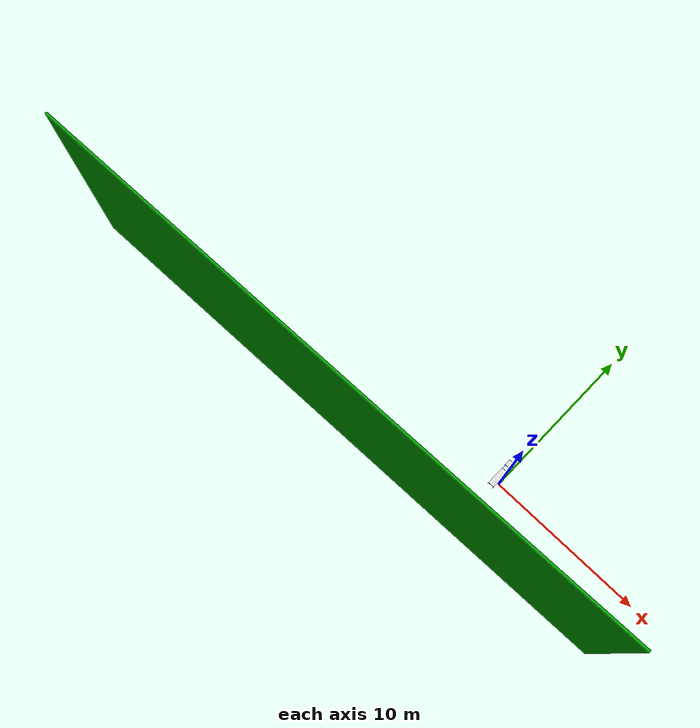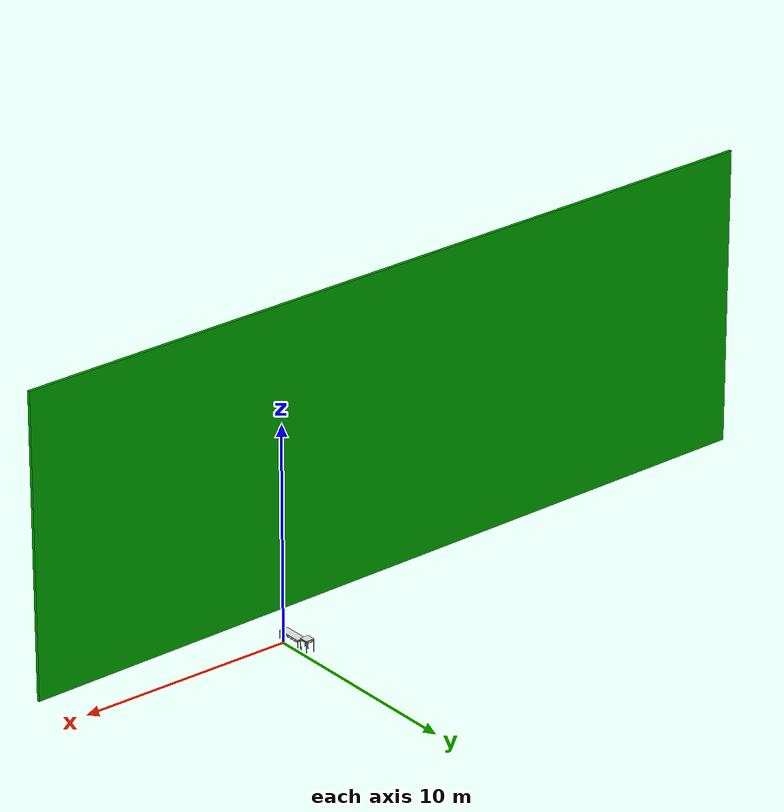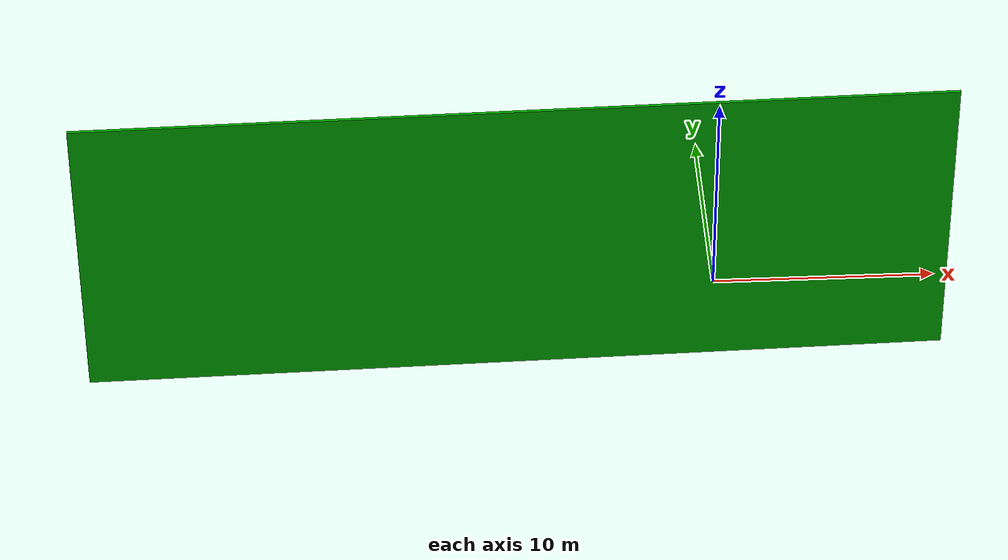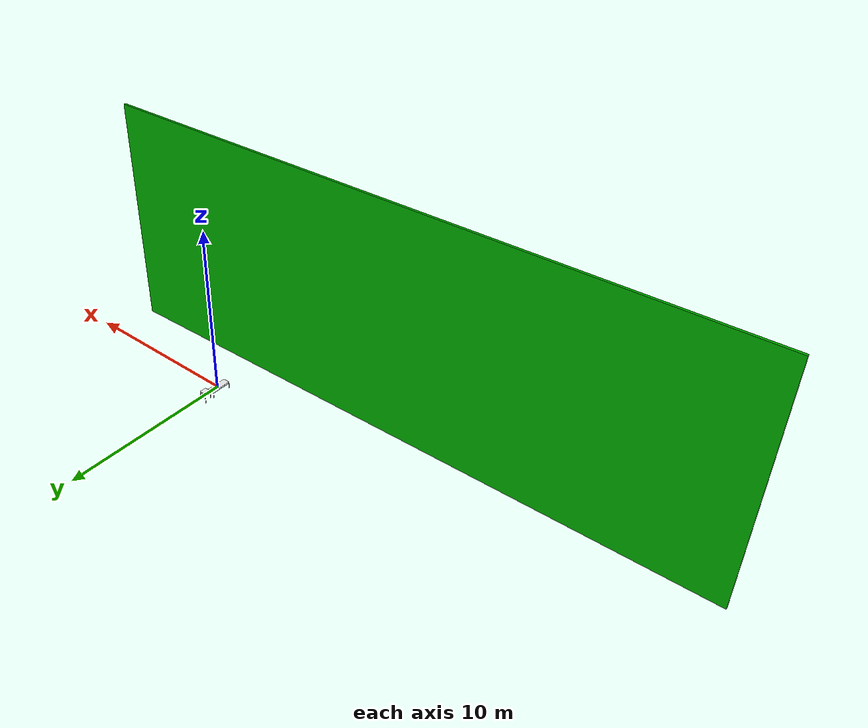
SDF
<sdf version="1.6">
 <world name="default">
  <model name="wrc_tall_table">
   <static>1</static>
   <link name="link">
    <inertial><mass>1</mass></inertial>
    <collision name="top">
     <pose>0 0 0.59 0 -0 0</pose>
     <geometry><box><size>0.4 0.4 0.02</size></box></geometry>
    </collision>
    <visual name="top_v">
     <pose>0 0 0.59 0 -0 0</pose>
     <geometry><box><size>0.4 0.4 0.02</size></box></geometry>
     <material>
      <script><uri>file://media/materials/scripts/gazebo.material</uri><name>Gazebo/White</name></script>
     </material>
    </visual>
    <collision name="leg1">
     <pose>0.19 0.19 0.285 0 -0 0</pose>
     <geometry><box><size>0.02 0.02 0.6</size></box></geometry>
    </collision>
    <visual name="leg1_v">
     <pose>0.19 0.19 0.285 0 -0 0</pose>
     <geometry><box><size>0.02 0.02 0.6</size></box></geometry>
     <material>
      <script><uri>file://media/materials/scripts/gazebo.material</uri><name>Gazebo/Gray</name></script>
     </material>
    </visual>
    <collision name="leg2">
     <pose>-0.19 0.19 0.285 0 -0 0</pose>
     <geometry><box><size>0.02 0.02 0.6</size></box></geometry>
    </collision>
    <visual name="leg2_v">
     <pose>-0.19 0.19 0.285 0 -0 0</pose>
     <geometry><box><size>0.02 0.02 0.6</size></box></geometry>
     <material>
      <script><uri>file://media/materials/scripts/gazebo.material</uri><name>Gazebo/Gray</name></script>
     </material>
    </visual>
    <collision name="leg3">
     <pose>0.19 -0.19 0.285 0 -0 0</pose>
     <geometry><box><size>0.02 0.02 0.6</size></box></geometry>
    </collision>
    <visual name="leg3_v">
     <pose>0.19 -0.19 0.285 0 -0 0</pose>
     <geometry><box><size>0.02 0.02 0.6</size></box></geometry>
     <material>
      <script><uri>file://media/materials/scripts/gazebo.material</uri><name>Gazebo/Gray</name></script>
     </material>
    </visual>
    <collision name="leg4">
     <pose>-0.19 -0.19 0.285 0 -0 0</pose>
     <geometry><box><size>0.02 0.02 0.6</size></box></geometry>
    </collision>
    <visual name="leg4_v">
     <pose>-0.19 -0.19 0.285 0 -0 0</pose>
     <geometry><box><size>0.02 0.02 0.6</size></box></geometry>
     <material>
      <script><uri>file://media/materials/scripts/gazebo.material</uri><name>Gazebo/Gray</name></script>
     </material>
    </visual>
    <collision name="side_panel1">
     <pose>0.175 0 0.52 0 -0 0</pose>
     <geometry><box><size>0.01 0.4 0.04</size></box></geometry>
    </collision>
    <visual name="side_panel1_v">
     <pose>0.175 0 0.52 0 -0 0</pose>
     <geometry><box><size>0.01 0.4 0.04</size></box></geometry>
     <material>
      <script><uri>file://media/materials/scripts/gazebo.material</uri><name>Gazebo/Gray</name></script>
     </material>
    </visual>
    <collision name="side_panel2">
     <pose>-0.175 0 0.52 0 -0 0</pose>
     <geometry><box><size>0.01 0.4 0.04</size></box></geometry>
    </collision>
    <visual name="side_panel2_v">
     <pose>-0.175 0 0.52 0 -0 0</pose>
     <geometry><box><size>0.01 0.4 0.04</size></box></geometry>
     <material>
      <script><uri>file://media/materials/scripts/gazebo.material</uri><name>Gazebo/Gray</name></script>
     </material>
    </visual>
    <collision name="bar1">
     <pose>0 0.2 0.49 0 1.57 0</pose>
     <geometry><cylinder><radius>0.01</radius><length>0.36</length></cylinder></geometry>
    </collision>
    <visual name="bar1_v">
     <pose>0 0.19 0.49 0 1.57 0</pose>
     <geometry><cylinder><radius>0.01</radius><length>0.36</length></cylinder></geometry>
     <material>
      <script><uri>file://media/materials/scripts/gazebo.material</uri><name>Gazebo/Gray</name></script>
     </material>
    </visual>
    <collision name="bar2">
     <pose>0 0.08 0.49 0 1.57 0</pose>
     <geometry><cylinder><radius>0.01</radius><length>0.36</length></cylinder></geometry>
    </collision>
    <visual name="bar2_v">
     <pose>0 0.08 0.49 0 1.57 0</pose>
     <geometry><cylinder><radius>0.01</radius><length>0.36</length></cylinder></geometry>
     <material>
      <script><uri>file://media/materials/scripts/gazebo.material</uri><name>Gazebo/Gray</name></script>
     </material>
    </visual>
    <collision name="bar3">
     <pose>0 0 0.49 0 1.57 0</pose>
     <geometry><cylinder><radius>0.01</radius><length>0.36</length></cylinder></geometry>
    </collision>
    <visual name="bar3_v">
     <pose>0 0 0.49 0 1.57 0</pose>
     <geometry><cylinder><radius>0.01</radius><length>0.36</length></cylinder></geometry>
     <material>
      <script><uri>file://media/materials/scripts/gazebo.material</uri><name>Gazebo/Gray</name></script>
     </material>
    </visual>
    <collision name="bar4">
     <pose>0 -0.08 0.49 0 1.57 0</pose>
     <geometry><cylinder><radius>0.01</radius><length>0.36</length></cylinder></geometry>
    </collision>
    <visual name="bar4_v">
     <pose>0 -0.09 0.49 0 1.57 0</pose>
     <geometry><cylinder><radius>0.01</radius><length>0.36</length></cylinder></geometry>
     <material>
      <script><uri>file://media/materials/scripts/gazebo.material</uri><name>Gazebo/Gray</name></script>
     </material>
    </visual>
    <collision name="bar5">
     <pose>0 -0.18 0.49 0 1.57 0</pose>
     <geometry><cylinder><radius>0.01</radius><length>0.36</length></cylinder></geometry>
    </collision>
    <visual name="bar5_v">
     <pose>0 -0.18 0.49 0 1.57 0</pose>
     <geometry><cylinder><radius>0.01</radius><length>0.36</length></cylinder></geometry>
     <material>
      <script><uri>file://media/materials/scripts/gazebo.material</uri><name>Gazebo/Gray</name></script>
     </material>
    </visual>
   </link>
   <pose>-0.3 1.2 0 0 -0 0</pose>
  </model>
  <model name="wrc_long_table">
   <static>1</static>
   <link name="link">
    <inertial><mass>1</mass></inertial>
    <collision name="top">
     <pose>0 0 0.39 0 -0 0</pose>
     <geometry><box><size>1.2 0.4 0.02</size></box></geometry>
    </collision>
    <visual name="top_v">
     <pose>0 0 0.39 0 -0 0</pose>
     <geometry><box><size>1.2 0.4 0.02</size></box></geometry>
     <material>
      <script><uri>file://media/materials/scripts/gazebo.material</uri><name>Gazebo/White</name></script>
     </material>
    </visual>
    <collision name="leg1">
     <pose>0.59 0.19 0.185 0 -0 0</pose>
     <geometry><box><size>0.02 0.02 0.4</size></box></geometry>
    </collision>
    <visual name="leg1_v">
     <pose>0.59 0.19 0.185 0 -0 0</pose>
     <geometry><box><size>0.02 0.02 0.4</size></box></geometry>
     <material>
      <script><uri>file://media/materials/scripts/gazebo.material</uri><name>Gazebo/Gray</name></script>
     </material>
    </visual>
    <collision name="leg2">
     <pose>-0.59 0.19 0.185 0 -0 0</pose>
     <geometry><box><size>0.02 0.02 0.4</size></box></geometry>
    </collision>
    <visual name="leg2_v">
     <pose>-0.59 0.19 0.185 0 -0 0</pose>
     <geometry><box><size>0.02 0.02 0.4</size></box></geometry>
     <material>
      <script><uri>file://media/materials/scripts/gazebo.material</uri><name>Gazebo/Gray</name></script>
     </material>
    </visual>
    <collision name="leg3">
     <pose>0.59 -0.19 0.185 0 -0 0</pose>
     <geometry><box><size>0.02 0.02 0.4</size></box></geometry>
    </collision>
    <visual name="leg3_v">
     <pose>0.59 -0.19 0.185 0 -0 0</pose>
     <geometry><box><size>0.02 0.02 0.4</size></box></geometry>
     <material>
      <script><uri>file://media/materials/scripts/gazebo.material</uri><name>Gazebo/Gray</name></script>
     </material>
    </visual>
    <collision name="leg4">
     <pose>-0.59 -0.19 0.185 0 -0 0</pose>
     <geometry><box><size>0.02 0.02 0.4</size></box></geometry>
    </collision>
    <visual name="leg4_v">
     <pose>-0.59 -0.19 0.185 0 -0 0</pose>
     <geometry><box><size>0.02 0.02 0.4</size></box></geometry>
     <material>
      <script><uri>file://media/materials/scripts/gazebo.material</uri><name>Gazebo/Gray</name></script>
     </material>
    </visual>
    <collision name="side_panel1">
     <pose>0.575 0 0.32 0 -0 0</pose>
     <geometry><box><size>0.01 0.4 0.04</size></box></geometry>
    </collision>
    <visual name="side_panel1_v">
     <pose>0.575 0 0.32 0 -0 0</pose>
     <geometry><box><size>0.01 0.4 0.04</size></box></geometry>
     <material>
      <script><uri>file://media/materials/scripts/gazebo.material</uri><name>Gazebo/Gray</name></script>
     </material>
    </visual>
    <collision name="side_panel2">
     <pose>-0.575 0 0.32 0 -0 0</pose>
     <geometry><box><size>0.01 0.4 0.04</size></box></geometry>
    </collision>
    <visual name="side_panel2_v">
     <pose>-0.575 0 0.32 0 -0 0</pose>
     <geometry><box><size>0.01 0.4 0.04</size></box></geometry>
     <material>
      <script><uri>file://media/materials/scripts/gazebo.material</uri><name>Gazebo/Gray</name></script>
     </material>
    </visual>
    <collision name="bar1">
     <pose>0 0.2 0.29 0 1.57 0</pose>
     <geometry><cylinder><radius>0.01</radius><length>1.16</length></cylinder></geometry>
    </collision>
    <visual name="bar1_v">
     <pose>0 0.19 0.29 0 1.57 0</pose>
     <geometry><cylinder><radius>0.01</radius><length>1.16</length></cylinder></geometry>
     <material>
      <script><uri>file://media/materials/scripts/gazebo.material</uri><name>Gazebo/Gray</name></script>
     </material>
    </visual>
    <collision name="bar2">
     <pose>0 0.08 0.29 0 1.57 0</pose>
     <geometry><cylinder><radius>0.01</radius><length>1.16</length></cylinder></geometry>
    </collision>
    <visual name="bar2_v">
     <pose>0 0.08 0.29 0 1.57 0</pose>
     <geometry><cylinder><radius>0.01</radius><length>1.16</length></cylinder></geometry>
     <material>
      <script><uri>file://media/materials/scripts/gazebo.material</uri><name>Gazebo/Gray</name></script>
     </material>
    </visual>
    <collision name="bar3">
     <pose>0 0 0.29 0 1.57 0</pose>
     <geometry><cylinder><radius>0.01</radius><length>1.16</length></cylinder></geometry>
    </collision>
    <visual name="bar3_v">
     <pose>0 0 0.29 0 1.57 0</pose>
     <geometry><cylinder><radius>0.01</radius><length>1.16</length></cylinder></geometry>
     <material>
      <script><uri>file://media/materials/scripts/gazebo.material</uri><name>Gazebo/Gray</name></script>
     </material>
    </visual>
    <collision name="bar4">
     <pose>0 -0.08 0.29 0 1.57 0</pose>
     <geometry><cylinder><radius>0.01</radius><length>1.16</length></cylinder></geometry>
    </collision>
    <visual name="bar4_v">
     <pose>0 -0.09 0.29 0 1.57 0</pose>
     <geometry><cylinder><radius>0.01</radius><length>1.16</length></cylinder></geometry>
     <material>
      <script><uri>file://media/materials/scripts/gazebo.material</uri><name>Gazebo/Gray</name></script>
     </material>
    </visual>
    <collision name="bar5">
     <pose>0 -0.18 0.29 0 1.57 0</pose>
     <geometry><cylinder><radius>0.01</radius><length>1.16</length></cylinder></geometry>
    </collision>
    <visual name="bar5_v">
     <pose>0 -0.18 0.29 0 1.57 0</pose>
     <geometry><cylinder><radius>0.01</radius><length>1.16</length></cylinder></geometry>
     <material>
      <script><uri>file://media/materials/scripts/gazebo.material</uri><name>Gazebo/Gray</name></script>
     </material>
    </visual>
   </link>
   <pose>-0.3 0.2 0 0 -0 1.57</pose>
  </model>
  <model name="training_wall">
   <link name="link">
    <inertial>
     <mass>71.1099</mass>
     <inertia><ixx>9778.1</ixx><ixy>0</ixy><ixz>0</ixz><iyy>1168.31</iyy><iyz>0</iyz><izz>8610</izz></inertia>
    </inertial>
    <pose>-8.36143 11.6881 6.14542 0 -0 0</pose>
    <visual name="visual">
     <geometry><box><size>0.132868 38.1175 14.0406</size></box></geometry>
     <material>
      <script><name>Gazebo/Grey</name><uri>file://media/materials/scripts/gazebo.material</uri></script>
      <shader type="pixel"><normal_map>__default__</normal_map></shader>
      <ambient>0.3 0.3 0.3 1</ambient>
      <diffuse>0 0.7 0 1</diffuse>
      <specular>0.01 0.01 0.01 1</specular>
      <emissive>0 0.6 0 1</emissive>
     </material>
    </visual>
    <collision name="collision">
     <geometry><box><size>0.132868 38.1175 14.0406</size></box></geometry>
     <surface>
      <friction>
       <ode><mu>1</mu><mu2>1</mu2><fdir1>0 0 0</fdir1><slip1>0</slip1><slip2>0</slip2></ode>
       <torsional>
        <coefficient>1</coefficient>
        <patch_radius>0</patch_radius>
        <surface_radius>0</surface_radius>
        <use_patch_radius>1</use_patch_radius>
        <ode><slip>0</slip></ode>
       </torsional>
      </friction>
      <bounce><restitution_coefficient>0</restitution_coefficient><threshold>1e+06</threshold></bounce>
      <contact>
       <collide_without_contact>0</collide_without_contact>
       <collide_without_contact_bitmask>1</collide_without_contact_bitmask>
       <collide_bitmask>1</collide_bitmask>
       <ode>
        <soft_cfm>0</soft_cfm>
        <soft_erp>0.2</soft_erp>
        <kp>1e+13</kp>
        <kd>1</kd>
        <max_vel>0.01</max_vel>
        <min_depth>0</min_depth>
       </ode>
       <bullet>
        <split_impulse>1</split_impulse>
        <split_impulse_penetration_threshold>-0.01</split_impulse_penetration_threshold>
        <soft_cfm>0</soft_cfm>
        <soft_erp>0.2</soft_erp>
        <kp>1e+13</kp>
        <kd>1</kd>
       </bullet>
      </contact>
     </surface>
    </collision>
   </link>
   <static>1</static>
   <pose>2.38276 4.6518 0 0 -0 1.59323</pose>
  </model>
 </world>
</sdf>
